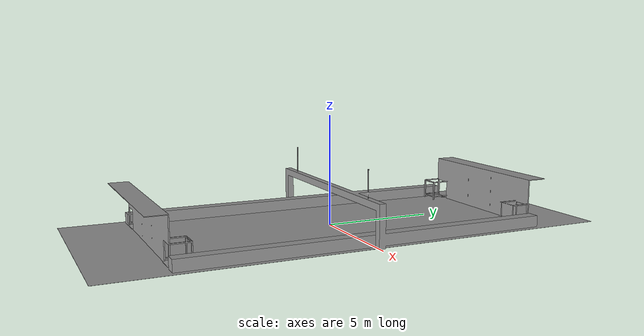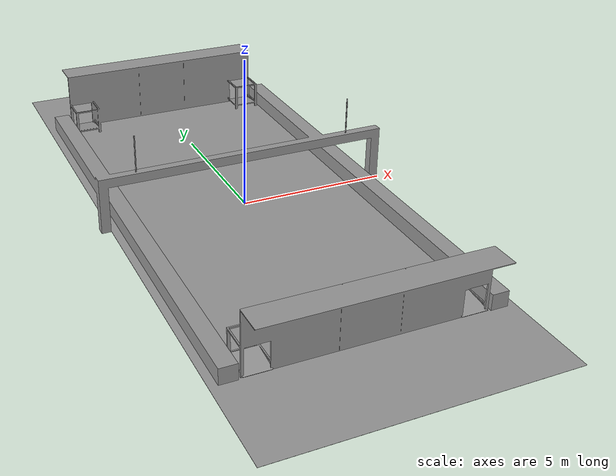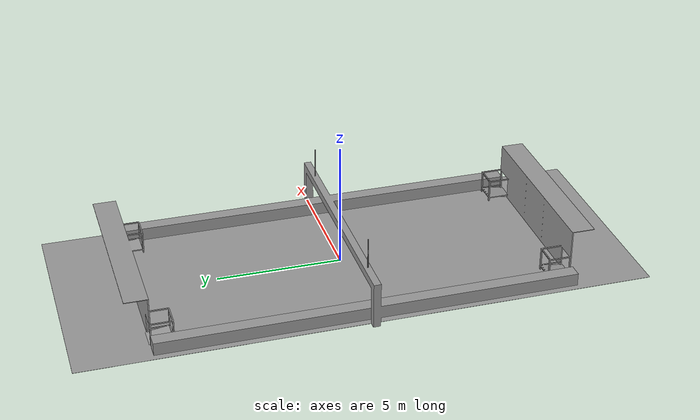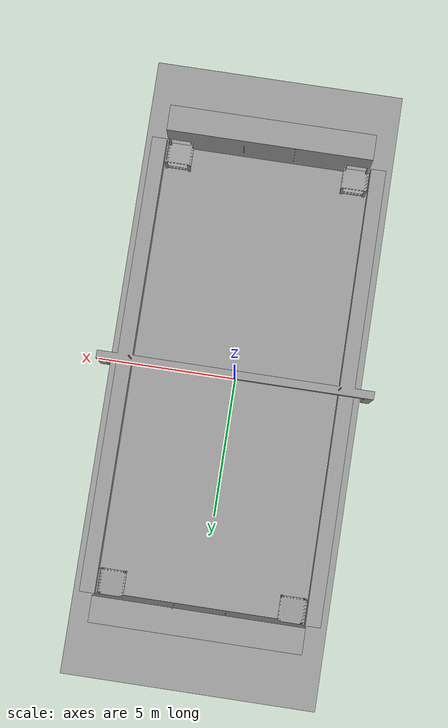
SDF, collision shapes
<sdf version='1.4'>
  <model name='frc_2014_field'>
    <static>1</static>
    <link name='base_link'>
      <pose>0 0 0 -1.57 -3.14159 0</pose>
      <inertial>
        <pose>0.0147649 0.343195 0.0536978 0 -0 0</pose>
        <mass>2154.83</mass>
        <inertia>
          <ixx>114605</ixx>
          <ixy>-42.3407</ixy>
          <ixz>-892.118</ixz>
          <iyy>128429</iyy>
          <iyz>-45.2444</iyz>
          <izz>15507.4</izz>
        </inertia>
      </inertial>
      <collision name='base_link_collision'>
        <pose>0 0 0 0 -0 0</pose>
        <geometry>
          <mesh>
            <scale>1 1 1</scale>
            <uri>model://frc_2014_field/meshes/base_link_col.STL</uri>
          </mesh>
        </geometry>
        <surface>
          <bounce>
            <restitution_coefficient>0.6</restitution_coefficient>
            <threshold>0</threshold>
          </bounce>
          <contact>
            <ode>
              <max_vel>1000</max_vel>
              <min_depth>0</min_depth>
            </ode>
          </contact>
          <friction>
            <ode/>
          </friction>
        </surface>
      </collision>
      <collision name='base_link_collision_Blue_zone'>
        <pose>0 0 0 0 -0 0</pose>
        <geometry>
          <mesh>
            <scale>1 1 1</scale>
            <uri>model://frc_2014_field/meshes/Blue_zone_col.STL</uri>
          </mesh>
        </geometry>
        <surface>
          <bounce>
            <restitution_coefficient>0.6</restitution_coefficient>
            <threshold>0</threshold>
          </bounce>
          <contact>
            <ode>
              <max_vel>1000</max_vel>
              <min_depth>0</min_depth>
            </ode>
          </contact>
          <friction>
            <ode/>
          </friction>
        </surface>
        <surface>
          <bounce>
            <restitution_coefficient>0.6</restitution_coefficient>
            <threshold>0</threshold>
          </bounce>
          <contact>
            <ode>
              <max_vel>1000</max_vel>
              <min_depth>0</min_depth>
            </ode>
          </contact>
          <friction>
            <ode/>
          </friction>
        </surface>
      </collision>
      <collision name='base_link_collision_Carpet'>
        <pose>0 0 0 0 -0 0</pose>
        <geometry>
          <mesh>
            <scale>1 1 1</scale>
            <uri>model://frc_2014_field/meshes/Carpet.STL</uri>
          </mesh>
        </geometry>
        <surface>
          <bounce>
            <restitution_coefficient>0.6</restitution_coefficient>
            <threshold>0</threshold>
          </bounce>
          <contact>
            <ode>
              <max_vel>1000</max_vel>
              <min_depth>0</min_depth>
            </ode>
          </contact>
          <friction>
            <ode/>
          </friction>
        </surface>
        <surface>
          <bounce>
            <restitution_coefficient>0.6</restitution_coefficient>
            <threshold>0</threshold>
          </bounce>
          <contact>
            <ode>
              <max_vel>1000</max_vel>
              <min_depth>0</min_depth>
            </ode>
          </contact>
          <friction>
            <ode/>
          </friction>
        </surface>
      </collision>
      <collision name='base_link_collision_Red_Zone'>
        <pose>0 0 0 0 -0 0</pose>
        <geometry>
          <mesh>
            <scale>1 1 1</scale>
            <uri>model://frc_2014_field/meshes/Red_Zone_col.STL</uri>
          </mesh>
        </geometry>
        <surface>
          <bounce>
            <restitution_coefficient>0.6</restitution_coefficient>
            <threshold>0</threshold>
          </bounce>
          <contact>
            <ode>
              <max_vel>1000</max_vel>
              <min_depth>0</min_depth>
            </ode>
          </contact>
          <friction>
            <ode/>
          </friction>
        </surface>
        <surface>
          <bounce>
            <restitution_coefficient>0.6</restitution_coefficient>
            <threshold>0</threshold>
          </bounce>
          <contact>
            <ode>
              <max_vel>1000</max_vel>
              <min_depth>0</min_depth>
            </ode>
          </contact>
          <friction>
            <ode/>
          </friction>
        </surface>
      </collision>
      <visual name='base_link_visual'>
        <pose>0 0 0 0 -0 0</pose>
        <geometry>
          <mesh>
            <scale>1 1 1</scale>
            <uri>model://frc_2014_field/meshes/base_link.STL</uri>
          </mesh>
        </geometry>
        <material>
          <script>
            <name>Gazebo/Grey</name>
            <uri>__default__</uri>
          </script>
        </material>
      </visual>
      <visual name='base_link_visual_Blue_zone'>
        <pose>0 0 0 0 -0 0</pose>
        <geometry>
          <mesh>
            <scale>1 1 1</scale>
            <uri>model://frc_2014_field/meshes/Blue_zone.STL</uri>
          </mesh>
        </geometry>
        <material>
          <script>
            <name>Gazebo/Blue</name>
            <uri>__default__</uri>
          </script>
        </material>
      </visual>
      <visual name='base_link_visual_Carpet'>
        <pose>0 0 0 0 -0 0</pose>
        <geometry>
          <mesh>
            <scale>1 1 1</scale>
            <uri>model://frc_2014_field/meshes/Carpet.STL</uri>
          </mesh>
        </geometry>
        <material>
          <script>
            <name>Gazebo/Grey</name>
            <uri>__default__</uri>
          </script>
        </material>
      </visual>
      <visual name='base_link_visual_Red_Zone'>
        <pose>0 0 0 0 -0 0</pose>
        <geometry>
          <mesh>
            <scale>1 1 1</scale>
            <uri>model://frc_2014_field/meshes/Red_Zone.STL</uri>
          </mesh>
        </geometry>
        <material>
          <script>
            <name>Gazebo/Red</name>
            <uri>__default__</uri>
          </script>
        </material>
      </visual>
      <visual name='base_link_visual_White_zone'>
        <pose>0 0 0 0 -0 0</pose>
        <geometry>
          <mesh>
            <scale>1 1 1</scale>
            <uri>model://frc_2014_field/meshes/White_zone.STL</uri>
          </mesh>
        </geometry>
        <material>
          <script>
            <name>Gazebo/White</name>
            <uri>__default__</uri>
          </script>
        </material>
      </visual>
      <velocity_decay>
        <linear>0</linear>
        <angular>0</angular>
      </velocity_decay>
      <velocity_decay>
        <linear>0</linear>
        <angular>0</angular>
      </velocity_decay>
      <velocity_decay>
        <linear>0</linear>
        <angular>0</angular>
      </velocity_decay>
      <velocity_decay>
        <linear>0</linear>
        <angular>0</angular>
      </velocity_decay>
      <gravity>0</gravity>
      <velocity_decay>
        <linear>0</linear>
        <angular>0</angular>
      </velocity_decay>
      <self_collide>0</self_collide>
    </link>
  </model>
</sdf>
